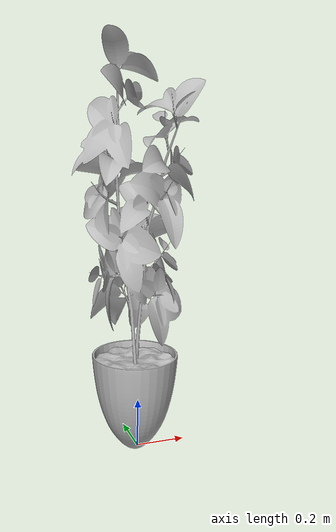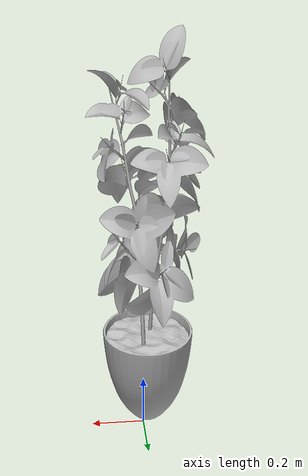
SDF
<?xml version="1.0" ?>
<sdf version="1.6">
  <model name="plant_3">

    <static>true</static>

    <link name="link">

      <visual name="visual">
        <pose>0 0 0 1.5708  0 0 </pose>
        <geometry>
          <mesh>
            <uri>model://plant_3/meshes/Plant3.obj</uri>
            <scale>1 1.5 1</scale>
          </mesh>
        </geometry>
      </visual>

      <collision name="collision">
      <pose>0 0 1.0 0 0 1.5708 </pose>
        <geometry>
          <cylinder>
            <radius>0.2</radius>
            <length>0.5</length>
          </cylinder>
        </geometry>
      </collision>

    </link>
  </model>
</sdf>
